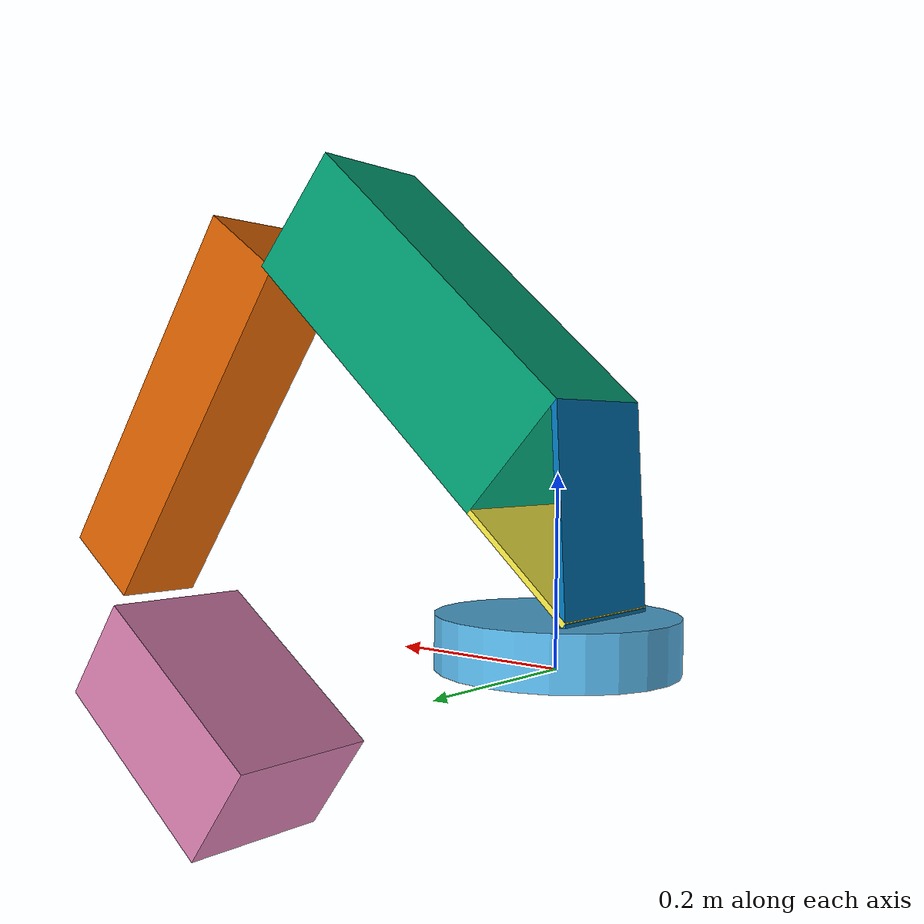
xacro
<?xml version="1.0"?>
<!-- This file contains a top level description for the model of just
    the arm without the Robot base -->
<robot name="excavator" xmlns:xacro="http://www.ros.org/wiki/xacro">
  <!-- Top-level robot description -->
  <xacro:include filename="model_constants.xacro"/>
  <xacro:include filename="arm_without_base.xacro"/>
  <gazebo>
    <plugin name="gazebo_ros_control" filename="libgazebo_ros_control.so">
      <robotNamespace>/tfr_arm</robotNamespace>
      <robotSimType>gazebo_ros_control/DefaultRobotHWSim</robotSimType>
    </plugin>
  </gazebo>
</robot>

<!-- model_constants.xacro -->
<!--NOTE must match the constants in the control code header in utilities-->
<robot name="excavator" xmlns:xacro="http://www.ros.org/wiki/xacro">
  <!-- Shared model level constants -->
  <!-- Inches to meters conversion -->
  <xacro:property name="itom" value="0.0254" />
  <!-- Degrees to radians conversion -->
  <xacro:property name="dtor" value="${pi/180}" />
  <xacro:property name="sqrt2" value="1.41421" />

  <!-- Drivebase parameters -->
  <xacro:property name="base_mass" value="${25.0}"/>

  <xacro:property name="base_length" value="${50*itom}" />

  <xacro:property name="tube_width" value="${2*itom}" />
  <xacro:property name="drivebase_beam_width" value="${11.5*itom}" />
  <xacro:property name="drivebase_front_beam_height" value="${4*itom}" />
  <xacro:property name="drivebase_total_height" value="${6*itom}" />

  <!-- Drivetrain parameters -->
  <xacro:property name="tred_left_mass" value="${30.0}" />
  <xacro:property name="tred_right_mass" value="${30.0}" />
  <xacro:property name="tread_end_radius" value="${(15.5/2)*itom}" />
  <xacro:property name="tread_mid_height" value="${19*itom}" />
  <xacro:property name="tread_mid_length" value="${24*itom}" />
  <xacro:property name="tread_width" value="${6*itom}" />
  <xacro:property name="tread_spacing" value="${16*itom}" />
  <xacro:property name="intertread_length" value="${39*itom}" />
  <xacro:property name="tread_slope_length" value="${11*itom}" />

  <!-- Bin parameters -->
  <!-- Length of top of bin, length of bottom is 13.86 -->
  <!-- Using the bigger size as a box instead of making complex angled shape -->
  <xacro:property name="bin_mass" value="${10.0}" />
  <xacro:property name="bin_length" value="${36*itom}" />
  <xacro:property name="bin_width" value="${13.5*itom}" />
  <xacro:property name="bin_height" value="${16*itom}" />
  <xacro:property name="bin_back_height" value="${9*itom}" />
  <xacro:property name="bin_back_offset" value="${6.5*itom}" />

  <!-- Turntable parameters -->
  <xacro:property name="turntable_mass" value="${25.0}"/>
  <xacro:property name="turntable_radius" value="${4.92*itom}" />
  <!-- 1" in model plus undefined height for mounting and extra components -->
  <!-- Rounded to 2" for now -->
  <xacro:property name="turntable_height" value="${2.25*itom}" />

  <!-- Lower arm parameters -->
  <xacro:property name="lower_arm_mass" value="${28.0}"/>
  <xacro:property name="lower_arm_length" value="${22*itom}" />
  <xacro:property name="lower_arm_primary_length" value="${16*itom}" />
  <xacro:property name="lower_arm_width" value="${6*itom}" />
  <xacro:property name="lower_arm_height" value="${6*itom}" />
  <xacro:property name="lower_arm_min" value="0.104" />
  <xacro:property name="lower_arm_max" value="1.55" />

  <!-- Upper arm parameters -->
  <xacro:property name="upper_arm_mass" value="${10.0}"/>
  <xacro:property name="upper_arm_length" value="${20*itom}" />
  <xacro:property name="upper_arm_width" value="${4.75*itom}" />
  <xacro:property name="upper_arm_height" value="${5*itom}" />
  <xacro:property name="upper_arm_min" value="0.98"/>
  <xacro:property name="upper_arm_max" value="2.4"/>

  <!-- Scoop parameters -->
  <xacro:property name="scoop_mass" value="${5.0}"/>
  <xacro:property name="scoop_width" value="${8.5*itom}" />
  <xacro:property name="scoop_length" value="${12*itom}" />
  <xacro:property name="scoop_diameter" value="${12.5*itom}" />
  <xacro:property name="scoop_min" value="-1.16614" />
  <xacro:property name="scoop_max" value="1.62" />
</robot>

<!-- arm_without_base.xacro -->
<!-- Model of the arm without the joint that would atatch it to the base.
    used for simulation the arm without the base -->
<robot xmlns:xacro="http://www.ros.org/wiki/xacro" name="excavator">

  <!-- attatch robot to world frame -->
  <link name="world">
  </link>

  <joint name="fixed" type="fixed">
    <parent link="world"/>
    <child link="turntable"/>
  </joint>

  <!--DIGGING ARM-->
  <link name="turntable">
    <visual>
      <geometry>
        <cylinder radius="${turntable_radius}" length="${turntable_height}" />
      </geometry>
      <origin xyz="0 0 ${turntable_height/2}" rpy="0 0 ${pi}" />
    </visual>
    <collision>
      <geometry>
        <cylinder radius="${turntable_radius}" length="${turntable_height}" />
      </geometry>
      <origin xyz="0 0 ${turntable_height/2}" rpy="0 0 ${pi}" />
    </collision>
    <!-- test -->
    <inertial>
      <mass value="20.0" />
      <inertia ixx="20.0" ixy="0.0" ixz="0.0" iyy="20.0" iyz="0.0" izz="20.0"/>
    </inertial>
  </link>

  <!--Removed joint because for my simulation I am not including the base-->

  <link name="lower_arm">
    <visual>
      <geometry>
        <box size="${lower_arm_height} ${lower_arm_width} ${lower_arm_primary_length}"/>
      </geometry>
      <origin xyz="${-lower_arm_height/2} 0 ${14*itom}" />
    </visual>
    <collision>
      <geometry>
        <box size="${lower_arm_height} ${lower_arm_width} ${lower_arm_primary_length}"/>
      </geometry>
      <origin xyz="${-lower_arm_height/2} 0 ${14*itom}" />
    </collision>
    <!-- test -->
    <inertial>
      <mass value="15.0" />
      <inertia ixx="15.0" ixy="0.0" ixz="0.0" iyy="15.0" iyz="0.0" izz="15.0"/>
    </inertial>
  </link>

  <joint name="lower_arm_joint" type="revolute">
    <parent link="turntable" />
    <child link="lower_arm" />
    <axis xyz="0 1 0" />
    <origin xyz="${-2.165*itom} 0 ${turntable_height}" />
    <limit effort="1.0" velocity="1.0" lower="${lower_arm_min}"
          upper="${lower_arm_max}" />
  </joint>
  <transmission name="lower_arm_tran">
    <type>transmission_interface/SimpleTransmission</type>
    <joint name="lower_arm_joint">
      <hardwareInterface>hardware_interface/PositionJointInterface
      </hardwareInterface>
    </joint>
    <actuator name="lower_motor">
      <hardwareInterface>hardware_interface/PositionJointInterface
      </hardwareInterface>
      <mechanicalReduction>1</mechanicalReduction>
      <motorTorqueConstant>1</motorTorqueConstant>
    </actuator>
  </transmission>

  <link name="lower_arm_bottom">
    <visual>
      <geometry>
        <box size="${0.25*itom} ${lower_arm_width} ${lower_arm_length - lower_arm_primary_length}"/>
      </geometry>
    </visual>
    <collision>
      <geometry>
        <box size="${0.25*itom} ${lower_arm_width} ${lower_arm_length - lower_arm_primary_length}"/>
      </geometry>
    </collision>
    <!-- test -->
    <inertial>
      <mass value="15.0" />
      <inertia ixx="15.0" ixy="0.0" ixz="0.0" iyy="15.0" iyz="0.0" izz="15.0"/>
    </inertial>
  </link>
  <joint name="lower_arm_bottom_joint" type="fixed">
    <parent link="lower_arm" />
    <child link="lower_arm_bottom" />
    <origin xyz="${-0.125*itom} 0 ${(lower_arm_length - lower_arm_primary_length)/2}" />
  </joint>

  <link name="lower_arm_slope">
    <visual>
      <geometry>
        <box size="${0.25*itom} ${lower_arm_width} ${(lower_arm_length - lower_arm_primary_length) * sqrt2}"/>
      </geometry>
      <origin xyz="${0.125*itom} 0 ${-(lower_arm_length - lower_arm_primary_length) / 2 * sqrt2}" rpy="0 0 0" />
    </visual>
    <collision>
      <geometry>
        <box size="${0.25*itom} ${lower_arm_width} ${(lower_arm_length - lower_arm_primary_length) * sqrt2}"/>
      </geometry>
      <origin xyz="${0.125*itom} 0 ${-(lower_arm_length - lower_arm_primary_length) / 2 * sqrt2}" rpy="0 0 0" />
    </collision>
    <!-- test -->
    <inertial>
      <mass value="15.0" />
      <inertia ixx="15.0" ixy="0.0" ixz="0.0" iyy="15.0" iyz="0.0" izz="15.0"/>
    </inertial>
  </link>
  <joint name="lower_arm_slope_joint" type="fixed">
    <parent link="lower_arm" />
    <child link="lower_arm_slope" />
    <origin xyz="${-lower_arm_height} 0 ${(lower_arm_length - lower_arm_primary_length)}" rpy="0 ${-44*dtor} 0"/>
  </joint>

  <link name="upper_arm">
    <visual>
      <geometry>
        <box size="${upper_arm_height} ${upper_arm_width} ${upper_arm_length}"/>
      </geometry>
      <origin xyz="${-upper_arm_height/2} 0 ${upper_arm_length/2}" />
    </visual>
    <collision>
      <geometry>
        <box size="${upper_arm_height} ${upper_arm_width} ${upper_arm_length}"/>
      </geometry>
      <origin xyz="${-upper_arm_height/2} 0 ${upper_arm_length/2}" />
    </collision>
    <!-- test -->
    <inertial>
      <mass value="10.0" />
      <inertia ixx="10.0" ixy="0.0" ixz="0.0" iyy="10.0" iyz="0.0" izz="10.0"/>
    </inertial>
  </link>
  <joint name="upper_arm_joint" type="revolute">
    <parent link="lower_arm" />
    <child link="upper_arm" />
    <axis xyz="0 1 0" />
    <origin xyz="0 0 ${lower_arm_length}" />
    <limit effort="1.0" velocity="1.0" lower="${upper_arm_min}"
          upper="${upper_arm_max}" />
  </joint>
  <transmission name="upper_arm_tran">
    <type>transmission_interface/SimpleTransmission</type>
    <joint name="upper_arm_joint">
      <hardwareInterface>hardware_interface/PositionJointInterface
      </hardwareInterface>
    </joint>
    <actuator name="upper_motor">
      <hardwareInterface>hardware_interface/PositionJointInterface
      </hardwareInterface>
      <mechanicalReduction>1</mechanicalReduction>
      <motorTorqueConstant>1</motorTorqueConstant>
    </actuator>
  </transmission>

  <link name="scoop">
    <visual>
      <geometry>
        <box size="${scoop_length} ${scoop_width} ${scoop_diameter/2}" />
      </geometry>
      <origin xyz="${scoop_length/2} 0 ${scoop_diameter/4}" />
    </visual>
    <collision>
      <geometry>
        <box size="${scoop_length} ${scoop_width} ${scoop_diameter/2}" />
      </geometry>
      <origin xyz="${scoop_length/2} 0 ${scoop_diameter/4}" />
    </collision>
    <!-- test -->
    <inertial>
      <mass value="5.0" />
      <inertia ixx="5.0" ixy="0.0" ixz="0.0" iyy="5.0" iyz="0.0" izz="5.0"/>
    </inertial>
  </link>
  <joint name="scoop_joint" type="revolute">
    <parent link="upper_arm" />
    <child link="scoop" />
    <origin xyz="${1.5*itom} 0 ${upper_arm_length - (0.875*itom)}" />
    <axis xyz="0 1 0" />
    <limit effort="1.0" velocity="1.0" lower="${scoop_min}"
          upper="${scoop_max}" />
  </joint>
  <transmission name="scoop_tran">
    <type>transmission_interface/SimpleTransmission</type>
    <joint name="scoop_joint">
      <hardwareInterface>hardware_interface/PositionJointInterface
      </hardwareInterface>
    </joint>
    <actuator name="end_motor">
      <hardwareInterface>hardware_interface/PositionJointInterface
      </hardwareInterface>
      <mechanicalReduction>1</mechanicalReduction>
      <motorTorqueConstant>1</motorTorqueConstant>
    </actuator>
  </transmission>
</robot>
